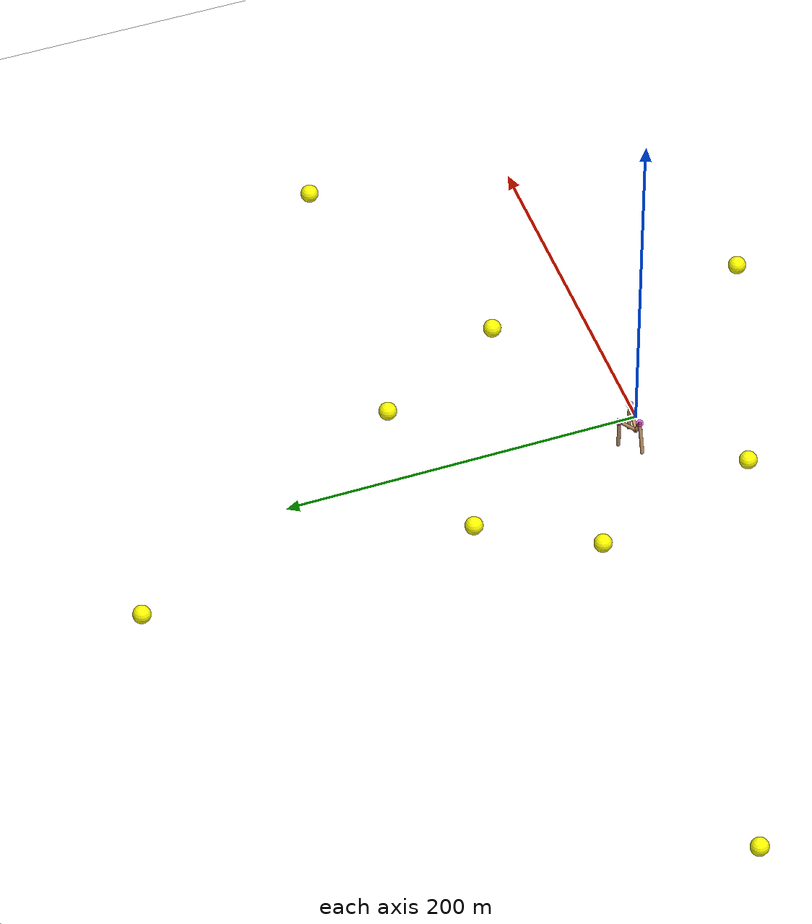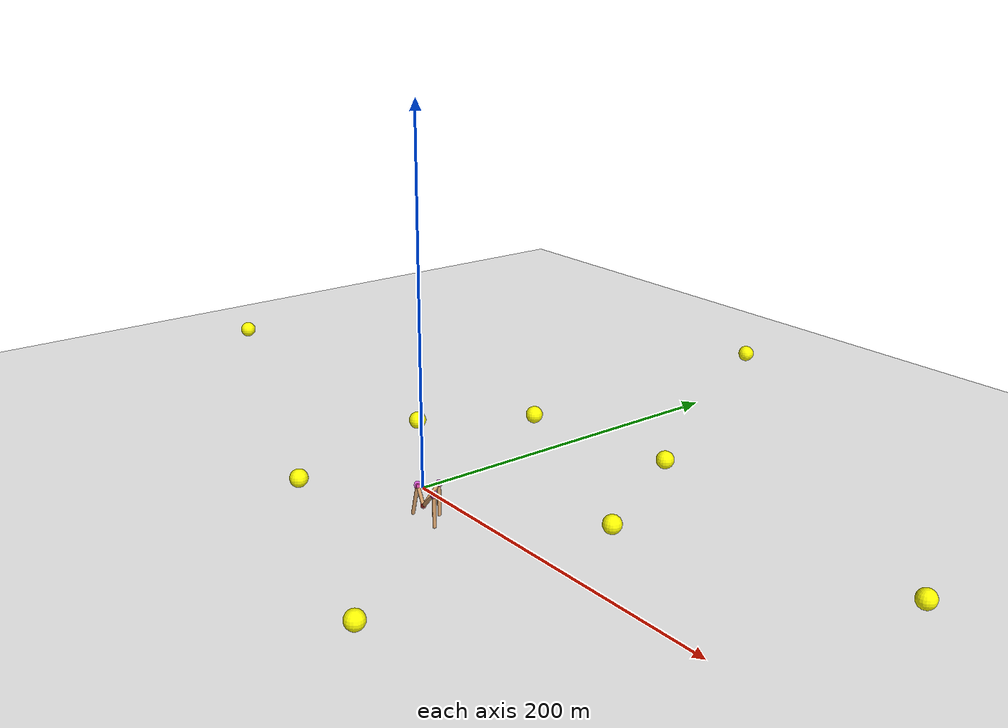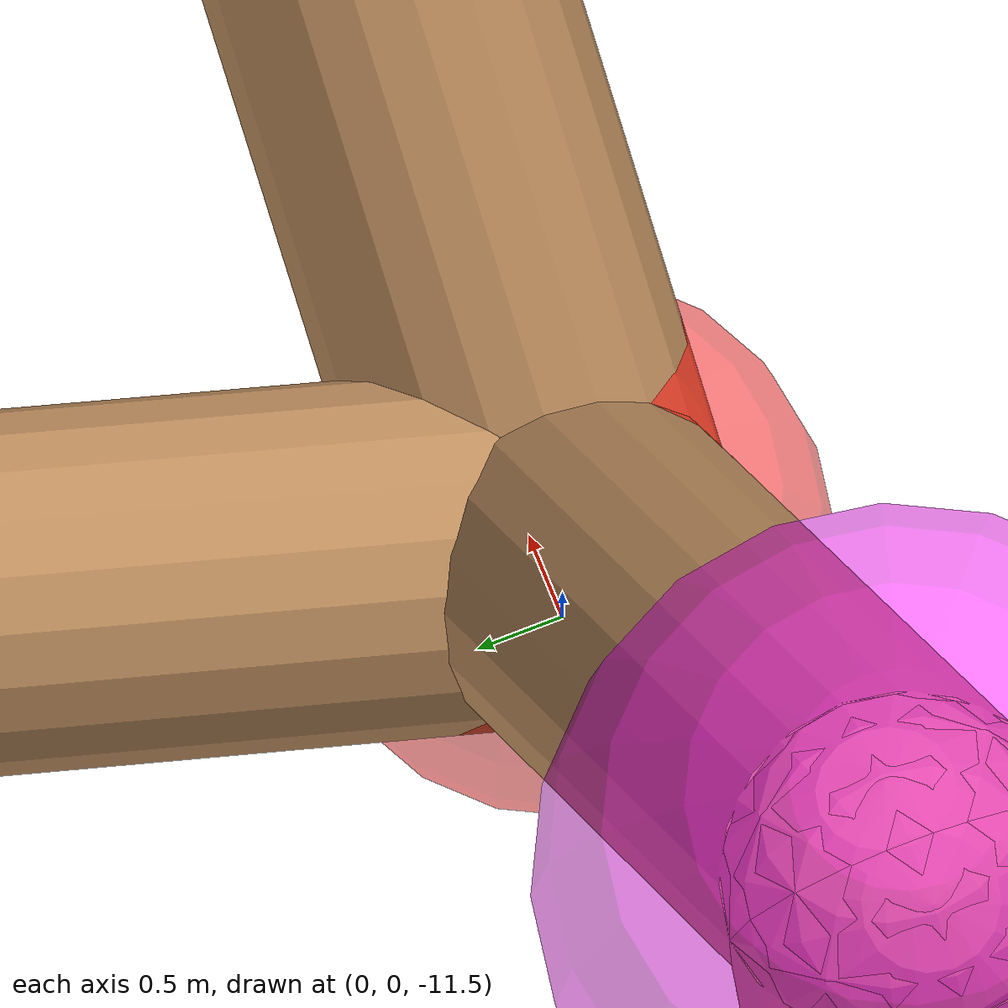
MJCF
<mujoco>
    <option timestep="0.02" viscosity="0" density="0" gravity="0 0 -9.81" collision="dynamic"/>
    <compiler coordinate="global" angle="degree"/>
    <default>
        <geom rgba=".8 .6 .4 1"/>
        <joint limited="true"/>
    </default>
    <asset>
        <texture type="skybox" builtin="gradient" rgb1="1 1 1" rgb2=".6 .8 1" width="256" height="256"/>
        <texture type="2d" name="checkers" builtin="checker" width="256" height="256" rgb1="0 0 0" rgb2="1 1 1"/>
        <material name="checker_mat" texture="checkers" texrepeat="15 15"/>
    </asset>
    <visual>
        <global offwidth="1920" offheight="1080"/>
    </visual>

    <sensor>
        <jointpos name="sensor_jointpos_0" joint="motor_0"/>
        <jointpos name="sensor_jointpos_1" joint="motor_1"/>
        <jointpos name="sensor_jointpos_2" joint="motor_2"/>
    </sensor>

    <worldbody>
        <camera name='targeting' pos='1 1 2' mode='targetbodycom' target='body_0'/>

        <geom name="floor" pos="0 0 -20" size="420 420 .125" rgba="1 1 1 1" type="plane"
              condim="6" friction="5 0.5 0.1"/>

        <site name="reference_0" pos="90 50 0" size="5 5 5" type="sphere" rgba="255 255 0 1"/>
        <site name="reference_1" pos="50 125 0" size="5 5 5" type="sphere" rgba="255 255 0 1"/>
        <site name="reference_2" pos="-45 110 0" size="5 5 5" type="sphere" rgba="255 255 0 1"/>
        <site name="reference_3" pos="-80 50 0" size="5 5 5" type="sphere" rgba="255 255 0 1"/>
        <site name="reference_4" pos="-50 -45 0" size="5 5 5" type="sphere" rgba="255 255 0 1"/>
        <site name="reference_5" pos="90 -95 0" size="5 5 5" type="sphere" rgba="255 255 0 1"/>
        <site name="reference_6" pos="225 110 0" size="5 5 5" type="sphere" rgba="255 255 0 1"/>
        <site name="reference_7" pos="-45 295 0" size="5 5 5" type="sphere" rgba="255 255 0 1"/>
        <site name="reference_8" pos="-300 50 0" size="5 5 5" type="sphere" rgba="255 255 0 1"/>

        <body name="body_0">
            <freejoint/>
            <site name="head" size="1.5 1.5 1.5" rgba="1 0 0 0.5" pos="0.00 0.00 -10"/>
            <geom name="geom_0" type="sphere" pos="0.00 0.00 -10" size="0.8" rgba="1 0 1 0.5"/>
            <body name="body_1">
                <geom name="geom_1" type="capsule" fromto="0.00 0.00 -10.00 10.00 0.00 0.00" size="1.00"/>
                <geom name="contact_0" type="sphere" pos="10.00 0.00 0.00" size="2" rgba="1 0 1 0.5"/>

                <geom name="geom_2" type="capsule" fromto="0.00 0.00 -10.00 0.00 10 0.00"  size="1.00"/>
                <body name="body_4">
                    <joint type="hinge" pos="0.00 0.00 -10.00" axis="0 0 1" limited="true"  range="0 45" name="motor_back_leg"/>
                    <geom name="geom_3" type="capsule" fromto="0.00 0.00 -10.00 -5.00 0.00 0.00" size="1.00"/>
                    <body name="body_7">
                        <joint type="hinge" pos="-5.00 0.00 0.00" axis="0 1 0" limited="true" range="0 50" name="motor_0"/>
                        <geom name="contact_1" type="sphere" pos="-5.00 0.00 0.00" size="2" rgba="1 0 1 0.5"/>
                        <geom name="geom_4" type="capsule" fromto="-5.00 0.00 0.00 -10.00 0.00 -18" size="1.00"/>
                    </body>
                </body>
                <body name="body_2">
                    <joint type="hinge" pos="10.00 0.00 0.00" axis="0 1 0" limited="true" range="-50 0" name="motor_2"/>
                    <geom name="geom_5" type="capsule" fromto="10.00 0.00 0.00 10.00 0.00 -18" size="1.00"/>
                </body>
                <body name="body_3">
                    <joint type="hinge" pos="0.00 10.00 0.00" axis="1 0 0" limited="true" range="0 50" name="motor_1"/>
                    <geom name="contact_2" type="sphere" pos="0.00 10.00 0.00" size="2" rgba="1 0 1 0.5"/>
                    <geom name="geom_7" type="capsule" fromto="0.00 10.00 0.00 0.00 10.00 -18" size="1.00"/>
                </body>
            </body>
        </body>
    </worldbody>

    <actuator>
        <motor name="motor_0" joint="motor_0" gear="100000"/>
        <motor name="motor_1" joint="motor_1" gear="100000"/>
        <motor name="motor_2" joint="motor_2" gear="100000"/>
        <motor name="motor_back_leg" joint="motor_back_leg" gear="100000"/>
    </actuator>
</mujoco>
